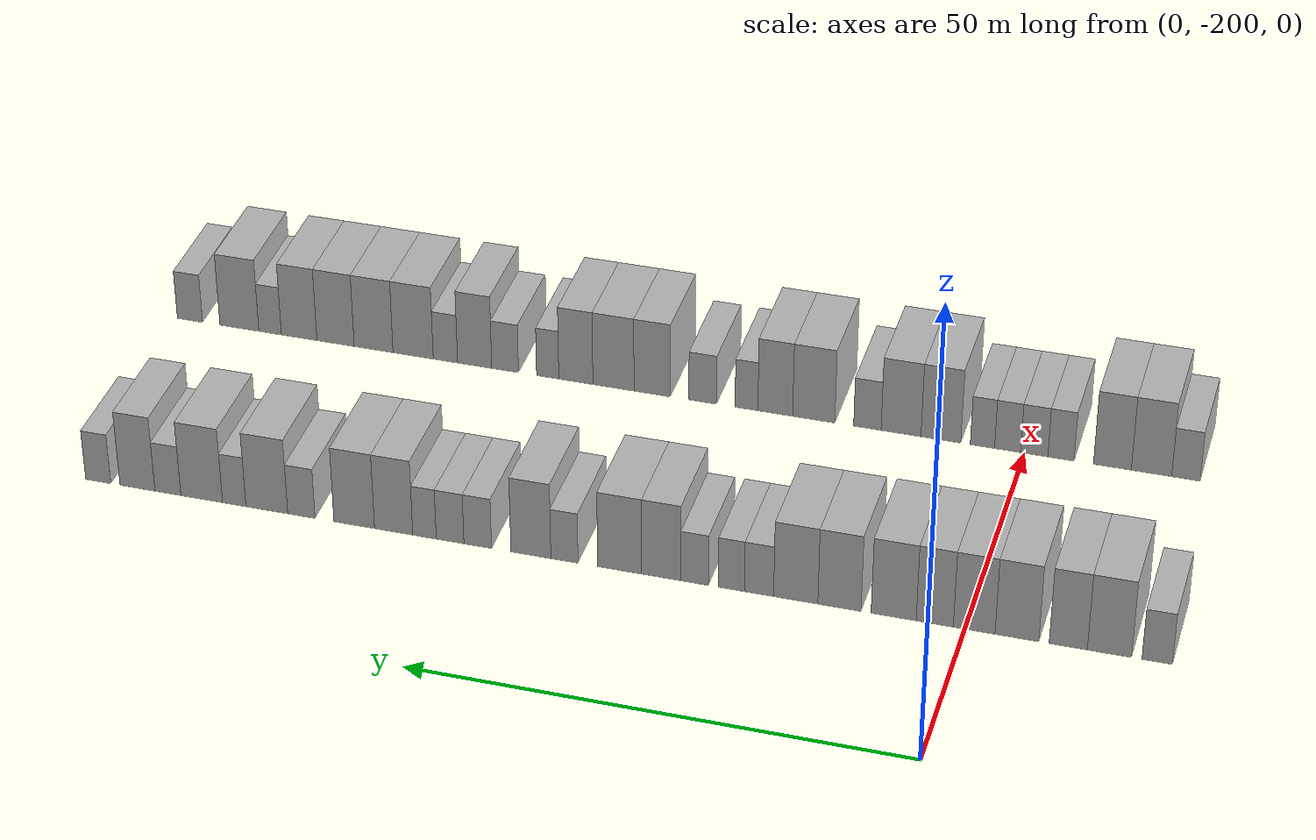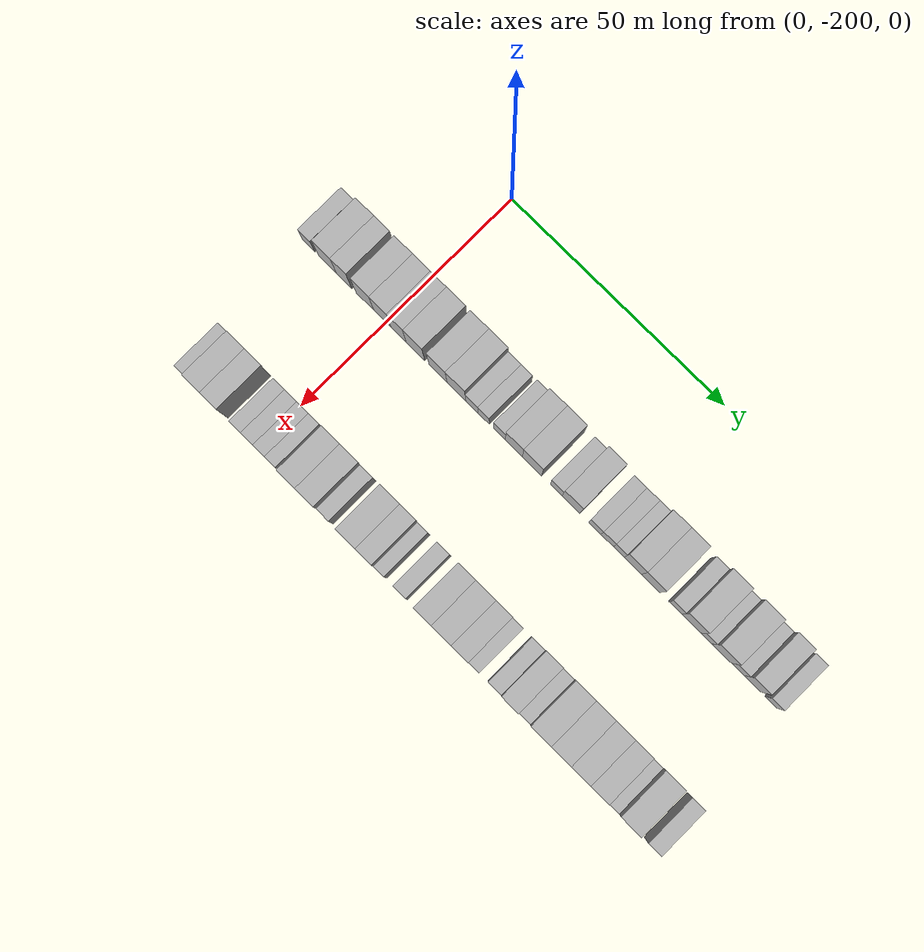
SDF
<sdf version="1.6">
 <world name="default">
  <model name="building_1">
   <static>1</static>
   <pose>25.0000 -218.5460 0 0.000000 0.000000 0.000000</pose>
   <link name="link">
    <pose>0 0 3.00 0 0 0</pose>
    <collision name="collision"><geometry><box><size>10.0000 2.9079 6.0000</size></box></geometry></collision>
    <visual name="visual">
     <cast_shadows>0</cast_shadows>
     <geometry><box><size>10.0000 2.9079 6.0000</size></box></geometry>
     <material>
      <script>
       <uri>model://HANNAS_wall/materials/scripts</uri>
       <uri>model://HANNAS_wall/materials/textures</uri>
       <name>vrc/HANNAS_wall</name>
      </script>
     </material>
    </visual>
   </link>
  </model>
  <model name="building_2">
   <static>1</static>
   <pose>25.0000 -213.9712 0 0.000000 0.000000 0.000000</pose>
   <link name="link">
    <pose>0 0 4.50 0 0 0</pose>
    <collision name="collision"><geometry><box><size>10.0000 4.2417 9.0000</size></box></geometry></collision>
    <visual name="visual">
     <cast_shadows>0</cast_shadows>
     <geometry><box><size>10.0000 4.2417 9.0000</size></box></geometry>
     <material>
      <script>
       <uri>model://HANNAS_wall/materials/scripts</uri>
       <uri>model://HANNAS_wall/materials/textures</uri>
       <name>vrc/HANNAS_wall</name>
      </script>
     </material>
    </visual>
   </link>
  </model>
  <model name="building_3">
   <static>1</static>
   <pose>25.0000 -210.0111 0 0.000000 0.000000 0.000000</pose>
   <link name="link">
    <pose>0 0 4.50 0 0 0</pose>
    <collision name="collision"><geometry><box><size>10.0000 3.6786 9.0000</size></box></geometry></collision>
    <visual name="visual">
     <cast_shadows>0</cast_shadows>
     <geometry><box><size>10.0000 3.6786 9.0000</size></box></geometry>
     <material>
      <script>
       <uri>model://HANNAS_wall/materials/scripts</uri>
       <uri>model://HANNAS_wall/materials/textures</uri>
       <name>vrc/HANNAS_wall</name>
      </script>
     </material>
    </visual>
   </link>
  </model>
  <model name="building_4">
   <static>1</static>
   <pose>25.0000 -205.0438 0 0.000000 0.000000 0.000000</pose>
   <link name="link">
    <pose>0 0 4.50 0 0 0</pose>
    <collision name="collision"><geometry><box><size>10.0000 4.2560 9.0000</size></box></geometry></collision>
    <visual name="visual">
     <cast_shadows>0</cast_shadows>
     <geometry><box><size>10.0000 4.2560 9.0000</size></box></geometry>
     <material>
      <script>
       <uri>model://HANNAS_wall/materials/scripts</uri>
       <uri>model://HANNAS_wall/materials/textures</uri>
       <name>vrc/HANNAS_wall</name>
      </script>
     </material>
    </visual>
   </link>
  </model>
  <model name="building_5">
   <static>1</static>
   <pose>25.0000 -200.8795 0 0.000000 0.000000 0.000000</pose>
   <link name="link">
    <pose>0 0 4.50 0 0 0</pose>
    <collision name="collision"><geometry><box><size>10.0000 4.0725 9.0000</size></box></geometry></collision>
    <visual name="visual">
     <cast_shadows>0</cast_shadows>
     <geometry><box><size>10.0000 4.0725 9.0000</size></box></geometry>
     <material>
      <script>
       <uri>model://HANNAS_wall/materials/scripts</uri>
       <uri>model://HANNAS_wall/materials/textures</uri>
       <name>vrc/HANNAS_wall</name>
      </script>
     </material>
    </visual>
   </link>
  </model>
  <model name="building_6">
   <static>1</static>
   <pose>25.0000 -197.0260 0 0.000000 0.000000 0.000000</pose>
   <link name="link">
    <pose>0 0 4.50 0 0 0</pose>
    <collision name="collision"><geometry><box><size>10.0000 3.6344 9.0000</size></box></geometry></collision>
    <visual name="visual">
     <cast_shadows>0</cast_shadows>
     <geometry><box><size>10.0000 3.6344 9.0000</size></box></geometry>
     <material>
      <script>
       <uri>model://HANNAS_wall/materials/scripts</uri>
       <uri>model://HANNAS_wall/materials/textures</uri>
       <name>vrc/HANNAS_wall</name>
      </script>
     </material>
    </visual>
   </link>
  </model>
  <model name="building_7">
   <static>1</static>
   <pose>25.0000 -192.9910 0 0.000000 0.000000 0.000000</pose>
   <link name="link">
    <pose>0 0 4.50 0 0 0</pose>
    <collision name="collision"><geometry><box><size>10.0000 4.4356 9.0000</size></box></geometry></collision>
    <visual name="visual">
     <cast_shadows>0</cast_shadows>
     <geometry><box><size>10.0000 4.4356 9.0000</size></box></geometry>
     <material>
      <script>
       <uri>model://HANNAS_wall/materials/scripts</uri>
       <uri>model://HANNAS_wall/materials/textures</uri>
       <name>vrc/HANNAS_wall</name>
      </script>
     </material>
    </visual>
   </link>
  </model>
  <model name="building_8">
   <static>1</static>
   <pose>25.0000 -187.6323 0 0.000000 0.000000 0.000000</pose>
   <link name="link">
    <pose>0 0 4.50 0 0 0</pose>
    <collision name="collision"><geometry><box><size>10.0000 4.2819 9.0000</size></box></geometry></collision>
    <visual name="visual">
     <cast_shadows>0</cast_shadows>
     <geometry><box><size>10.0000 4.2819 9.0000</size></box></geometry>
     <material>
      <script>
       <uri>model://HANNAS_wall/materials/scripts</uri>
       <uri>model://HANNAS_wall/materials/textures</uri>
       <name>vrc/HANNAS_wall</name>
      </script>
     </material>
    </visual>
   </link>
  </model>
  <model name="building_9">
   <static>1</static>
   <pose>25.0000 -183.2862 0 0.000000 0.000000 0.000000</pose>
   <link name="link">
    <pose>0 0 4.50 0 0 0</pose>
    <collision name="collision"><geometry><box><size>10.0000 4.4103 9.0000</size></box></geometry></collision>
    <visual name="visual">
     <cast_shadows>0</cast_shadows>
     <geometry><box><size>10.0000 4.4103 9.0000</size></box></geometry>
     <material>
      <script>
       <uri>model://HANNAS_wall/materials/scripts</uri>
       <uri>model://HANNAS_wall/materials/textures</uri>
       <name>vrc/HANNAS_wall</name>
      </script>
     </material>
    </visual>
   </link>
  </model>
  <model name="building_10">
   <static>1</static>
   <pose>25.0000 -179.6199 0 0.000000 0.000000 0.000000</pose>
   <link name="link">
    <pose>0 0 3.00 0 0 0</pose>
    <collision name="collision"><geometry><box><size>10.0000 2.9221 6.0000</size></box></geometry></collision>
    <visual name="visual">
     <cast_shadows>0</cast_shadows>
     <geometry><box><size>10.0000 2.9221 6.0000</size></box></geometry>
     <material>
      <script>
       <uri>model://HANNAS_wall/materials/scripts</uri>
       <uri>model://HANNAS_wall/materials/textures</uri>
       <name>vrc/HANNAS_wall</name>
      </script>
     </material>
    </visual>
   </link>
  </model>
  <model name="building_11">
   <static>1</static>
   <pose>25.0000 -176.8499 0 0.000000 0.000000 0.000000</pose>
   <link name="link">
    <pose>0 0 3.00 0 0 0</pose>
    <collision name="collision"><geometry><box><size>10.0000 2.6181 6.0000</size></box></geometry></collision>
    <visual name="visual">
     <cast_shadows>0</cast_shadows>
     <geometry><box><size>10.0000 2.6181 6.0000</size></box></geometry>
     <material>
      <script>
       <uri>model://HANNAS_wall/materials/scripts</uri>
       <uri>model://HANNAS_wall/materials/textures</uri>
       <name>vrc/HANNAS_wall</name>
      </script>
     </material>
    </visual>
   </link>
  </model>
  <model name="building_12">
   <static>1</static>
   <pose>25.0000 -173.1496 0 0.000000 0.000000 0.000000</pose>
   <link name="link">
    <pose>0 0 3.00 0 0 0</pose>
    <collision name="collision"><geometry><box><size>10.0000 2.7825 6.0000</size></box></geometry></collision>
    <visual name="visual">
     <cast_shadows>0</cast_shadows>
     <geometry><box><size>10.0000 2.7825 6.0000</size></box></geometry>
     <material>
      <script>
       <uri>model://HANNAS_wall/materials/scripts</uri>
       <uri>model://HANNAS_wall/materials/textures</uri>
       <name>vrc/HANNAS_wall</name>
      </script>
     </material>
    </visual>
   </link>
  </model>
  <model name="building_13">
   <static>1</static>
   <pose>25.0000 -169.7729 0 0.000000 0.000000 0.000000</pose>
   <link name="link">
    <pose>0 0 4.50 0 0 0</pose>
    <collision name="collision"><geometry><box><size>10.0000 3.9707 9.0000</size></box></geometry></collision>
    <visual name="visual">
     <cast_shadows>0</cast_shadows>
     <geometry><box><size>10.0000 3.9707 9.0000</size></box></geometry>
     <material>
      <script>
       <uri>model://HANNAS_wall/materials/scripts</uri>
       <uri>model://HANNAS_wall/materials/textures</uri>
       <name>vrc/HANNAS_wall</name>
      </script>
     </material>
    </visual>
   </link>
  </model>
  <model name="building_14">
   <static>1</static>
   <pose>25.0000 -165.5477 0 0.000000 0.000000 0.000000</pose>
   <link name="link">
    <pose>0 0 4.50 0 0 0</pose>
    <collision name="collision"><geometry><box><size>10.0000 4.4798 9.0000</size></box></geometry></collision>
    <visual name="visual">
     <cast_shadows>0</cast_shadows>
     <geometry><box><size>10.0000 4.4798 9.0000</size></box></geometry>
     <material>
      <script>
       <uri>model://HANNAS_wall/materials/scripts</uri>
       <uri>model://HANNAS_wall/materials/textures</uri>
       <name>vrc/HANNAS_wall</name>
      </script>
     </material>
    </visual>
   </link>
  </model>
  <model name="building_15">
   <static>1</static>
   <pose>25.0000 -159.9158 0 0.000000 0.000000 0.000000</pose>
   <link name="link">
    <pose>0 0 3.00 0 0 0</pose>
    <collision name="collision"><geometry><box><size>10.0000 2.7840 6.0000</size></box></geometry></collision>
    <visual name="visual">
     <cast_shadows>0</cast_shadows>
     <geometry><box><size>10.0000 2.7840 6.0000</size></box></geometry>
     <material>
      <script>
       <uri>model://HANNAS_wall/materials/scripts</uri>
       <uri>model://HANNAS_wall/materials/textures</uri>
       <name>vrc/HANNAS_wall</name>
      </script>
     </material>
    </visual>
   </link>
  </model>
  <model name="building_16">
   <static>1</static>
   <pose>25.0000 -156.4676 0 0.000000 0.000000 0.000000</pose>
   <link name="link">
    <pose>0 0 4.50 0 0 0</pose>
    <collision name="collision"><geometry><box><size>10.0000 4.1124 9.0000</size></box></geometry></collision>
    <visual name="visual">
     <cast_shadows>0</cast_shadows>
     <geometry><box><size>10.0000 4.1124 9.0000</size></box></geometry>
     <material>
      <script>
       <uri>model://HANNAS_wall/materials/scripts</uri>
       <uri>model://HANNAS_wall/materials/textures</uri>
       <name>vrc/HANNAS_wall</name>
      </script>
     </material>
    </visual>
   </link>
  </model>
  <model name="building_17">
   <static>1</static>
   <pose>25.0000 -150.9805 0 0.000000 0.000000 0.000000</pose>
   <link name="link">
    <pose>0 0 3.00 0 0 0</pose>
    <collision name="collision"><geometry><box><size>10.0000 2.8616 6.0000</size></box></geometry></collision>
    <visual name="visual">
     <cast_shadows>0</cast_shadows>
     <geometry><box><size>10.0000 2.8616 6.0000</size></box></geometry>
     <material>
      <script>
       <uri>model://HANNAS_wall/materials/scripts</uri>
       <uri>model://HANNAS_wall/materials/textures</uri>
       <name>vrc/HANNAS_wall</name>
      </script>
     </material>
    </visual>
   </link>
  </model>
  <model name="building_18">
   <static>1</static>
   <pose>25.0000 -148.1120 0 0.000000 0.000000 0.000000</pose>
   <link name="link">
    <pose>0 0 3.00 0 0 0</pose>
    <collision name="collision"><geometry><box><size>10.0000 2.8755 6.0000</size></box></geometry></collision>
    <visual name="visual">
     <cast_shadows>0</cast_shadows>
     <geometry><box><size>10.0000 2.8755 6.0000</size></box></geometry>
     <material>
      <script>
       <uri>model://HANNAS_wall/materials/scripts</uri>
       <uri>model://HANNAS_wall/materials/textures</uri>
       <name>vrc/HANNAS_wall</name>
      </script>
     </material>
    </visual>
   </link>
  </model>
  <model name="building_19">
   <static>1</static>
   <pose>25.0000 -145.4479 0 0.000000 0.000000 0.000000</pose>
   <link name="link">
    <pose>0 0 3.00 0 0 0</pose>
    <collision name="collision"><geometry><box><size>10.0000 2.4528 6.0000</size></box></geometry></collision>
    <visual name="visual">
     <cast_shadows>0</cast_shadows>
     <geometry><box><size>10.0000 2.4528 6.0000</size></box></geometry>
     <material>
      <script>
       <uri>model://HANNAS_wall/materials/scripts</uri>
       <uri>model://HANNAS_wall/materials/textures</uri>
       <name>vrc/HANNAS_wall</name>
      </script>
     </material>
    </visual>
   </link>
  </model>
  <model name="building_20">
   <static>1</static>
   <pose>25.0000 -142.2186 0 0.000000 0.000000 0.000000</pose>
   <link name="link">
    <pose>0 0 4.50 0 0 0</pose>
    <collision name="collision"><geometry><box><size>10.0000 4.0057 9.0000</size></box></geometry></collision>
    <visual name="visual">
     <cast_shadows>0</cast_shadows>
     <geometry><box><size>10.0000 4.0057 9.0000</size></box></geometry>
     <material>
      <script>
       <uri>model://HANNAS_wall/materials/scripts</uri>
       <uri>model://HANNAS_wall/materials/textures</uri>
       <name>vrc/HANNAS_wall</name>
      </script>
     </material>
    </visual>
   </link>
  </model>
  <model name="building_21">
   <static>1</static>
   <pose>25.0000 -138.0832 0 0.000000 0.000000 0.000000</pose>
   <link name="link">
    <pose>0 0 4.50 0 0 0</pose>
    <collision name="collision"><geometry><box><size>10.0000 4.2652 9.0000</size></box></geometry></collision>
    <visual name="visual">
     <cast_shadows>0</cast_shadows>
     <geometry><box><size>10.0000 4.2652 9.0000</size></box></geometry>
     <material>
      <script>
       <uri>model://HANNAS_wall/materials/scripts</uri>
       <uri>model://HANNAS_wall/materials/textures</uri>
       <name>vrc/HANNAS_wall</name>
      </script>
     </material>
    </visual>
   </link>
  </model>
  <model name="building_22">
   <static>1</static>
   <pose>25.0000 -132.5046 0 0.000000 0.000000 0.000000</pose>
   <link name="link">
    <pose>0 0 3.00 0 0 0</pose>
    <collision name="collision"><geometry><box><size>10.0000 2.8920 6.0000</size></box></geometry></collision>
    <visual name="visual">
     <cast_shadows>0</cast_shadows>
     <geometry><box><size>10.0000 2.8920 6.0000</size></box></geometry>
     <material>
      <script>
       <uri>model://HANNAS_wall/materials/scripts</uri>
       <uri>model://HANNAS_wall/materials/textures</uri>
       <name>vrc/HANNAS_wall</name>
      </script>
     </material>
    </visual>
   </link>
  </model>
  <model name="building_23">
   <static>1</static>
   <pose>25.0000 -128.8323 0 0.000000 0.000000 0.000000</pose>
   <link name="link">
    <pose>0 0 4.50 0 0 0</pose>
    <collision name="collision"><geometry><box><size>10.0000 4.4527 9.0000</size></box></geometry></collision>
    <visual name="visual">
     <cast_shadows>0</cast_shadows>
     <geometry><box><size>10.0000 4.4527 9.0000</size></box></geometry>
     <material>
      <script>
       <uri>model://HANNAS_wall/materials/scripts</uri>
       <uri>model://HANNAS_wall/materials/textures</uri>
       <name>vrc/HANNAS_wall</name>
      </script>
     </material>
    </visual>
   </link>
  </model>
  <model name="building_24">
   <static>1</static>
   <pose>25.0000 -125.3593 0 0.000000 0.000000 0.000000</pose>
   <link name="link">
    <pose>0 0 3.00 0 0 0</pose>
    <collision name="collision"><geometry><box><size>10.0000 2.4932 6.0000</size></box></geometry></collision>
    <visual name="visual">
     <cast_shadows>0</cast_shadows>
     <geometry><box><size>10.0000 2.4932 6.0000</size></box></geometry>
     <material>
      <script>
       <uri>model://HANNAS_wall/materials/scripts</uri>
       <uri>model://HANNAS_wall/materials/textures</uri>
       <name>vrc/HANNAS_wall</name>
      </script>
     </material>
    </visual>
   </link>
  </model>
  <model name="building_25">
   <static>1</static>
   <pose>25.0000 -121.8784 0 0.000000 0.000000 0.000000</pose>
   <link name="link">
    <pose>0 0 4.50 0 0 0</pose>
    <collision name="collision"><geometry><box><size>10.0000 4.4687 9.0000</size></box></geometry></collision>
    <visual name="visual">
     <cast_shadows>0</cast_shadows>
     <geometry><box><size>10.0000 4.4687 9.0000</size></box></geometry>
     <material>
      <script>
       <uri>model://HANNAS_wall/materials/scripts</uri>
       <uri>model://HANNAS_wall/materials/textures</uri>
       <name>vrc/HANNAS_wall</name>
      </script>
     </material>
    </visual>
   </link>
  </model>
  <model name="building_26">
   <static>1</static>
   <pose>25.0000 -118.2513 0 0.000000 0.000000 0.000000</pose>
   <link name="link">
    <pose>0 0 3.00 0 0 0</pose>
    <collision name="collision"><geometry><box><size>10.0000 2.7856 6.0000</size></box></geometry></collision>
    <visual name="visual">
     <cast_shadows>0</cast_shadows>
     <geometry><box><size>10.0000 2.7856 6.0000</size></box></geometry>
     <material>
      <script>
       <uri>model://HANNAS_wall/materials/scripts</uri>
       <uri>model://HANNAS_wall/materials/textures</uri>
       <name>vrc/HANNAS_wall</name>
      </script>
     </material>
    </visual>
   </link>
  </model>
  <model name="building_27">
   <static>1</static>
   <pose>25.0000 -114.9687 0 0.000000 0.000000 0.000000</pose>
   <link name="link">
    <pose>0 0 4.50 0 0 0</pose>
    <collision name="collision"><geometry><box><size>10.0000 3.7795 9.0000</size></box></geometry></collision>
    <visual name="visual">
     <cast_shadows>0</cast_shadows>
     <geometry><box><size>10.0000 3.7795 9.0000</size></box></geometry>
     <material>
      <script>
       <uri>model://HANNAS_wall/materials/scripts</uri>
       <uri>model://HANNAS_wall/materials/textures</uri>
       <name>vrc/HANNAS_wall</name>
      </script>
     </material>
    </visual>
   </link>
  </model>
  <model name="building_28">
   <static>1</static>
   <pose>25.0000 -110.7197 0 0.000000 0.000000 0.000000</pose>
   <link name="link">
    <pose>0 0 3.00 0 0 0</pose>
    <collision name="collision"><geometry><box><size>10.0000 2.7185 6.0000</size></box></geometry></collision>
    <visual name="visual">
     <cast_shadows>0</cast_shadows>
     <geometry><box><size>10.0000 2.7185 6.0000</size></box></geometry>
     <material>
      <script>
       <uri>model://HANNAS_wall/materials/scripts</uri>
       <uri>model://HANNAS_wall/materials/textures</uri>
       <name>vrc/HANNAS_wall</name>
      </script>
     </material>
    </visual>
   </link>
  </model>
  <model name="building_112">
   <static>1</static>
   <pose>55.0000 -216.5493 0 0.000000 0.000000 0.000000</pose>
   <link name="link">
    <pose>0 0 3.00 0 0 0</pose>
    <collision name="collision"><geometry><box><size>10.0000 2.9014 6.0000</size></box></geometry></collision>
    <visual name="visual">
     <cast_shadows>0</cast_shadows>
     <geometry><box><size>10.0000 2.9014 6.0000</size></box></geometry>
     <material>
      <script>
       <uri>model://HANNAS_wall/materials/scripts</uri>
       <uri>model://HANNAS_wall/materials/textures</uri>
       <name>vrc/HANNAS_wall</name>
      </script>
     </material>
    </visual>
   </link>
  </model>
  <model name="building_113">
   <static>1</static>
   <pose>55.0000 -213.0366 0 0.000000 0.000000 0.000000</pose>
   <link name="link">
    <pose>0 0 4.50 0 0 0</pose>
    <collision name="collision"><geometry><box><size>10.0000 4.1239 9.0000</size></box></geometry></collision>
    <visual name="visual">
     <cast_shadows>0</cast_shadows>
     <geometry><box><size>10.0000 4.1239 9.0000</size></box></geometry>
     <material>
      <script>
       <uri>model://HANNAS_wall/materials/scripts</uri>
       <uri>model://HANNAS_wall/materials/textures</uri>
       <name>vrc/HANNAS_wall</name>
      </script>
     </material>
    </visual>
   </link>
  </model>
  <model name="building_114">
   <static>1</static>
   <pose>55.0000 -209.0374 0 0.000000 0.000000 0.000000</pose>
   <link name="link">
    <pose>0 0 4.50 0 0 0</pose>
    <collision name="collision"><geometry><box><size>10.0000 3.8745 9.0000</size></box></geometry></collision>
    <visual name="visual">
     <cast_shadows>0</cast_shadows>
     <geometry><box><size>10.0000 3.8745 9.0000</size></box></geometry>
     <material>
      <script>
       <uri>model://HANNAS_wall/materials/scripts</uri>
       <uri>model://HANNAS_wall/materials/textures</uri>
       <name>vrc/HANNAS_wall</name>
      </script>
     </material>
    </visual>
   </link>
  </model>
  <model name="building_115">
   <static>1</static>
   <pose>55.0000 -203.7443 0 0.000000 0.000000 0.000000</pose>
   <link name="link">
    <pose>0 0 3.00 0 0 0</pose>
    <collision name="collision"><geometry><box><size>10.0000 2.7118 6.0000</size></box></geometry></collision>
    <visual name="visual">
     <cast_shadows>0</cast_shadows>
     <geometry><box><size>10.0000 2.7118 6.0000</size></box></geometry>
     <material>
      <script>
       <uri>model://HANNAS_wall/materials/scripts</uri>
       <uri>model://HANNAS_wall/materials/textures</uri>
       <name>vrc/HANNAS_wall</name>
      </script>
     </material>
    </visual>
   </link>
  </model>
  <model name="building_116">
   <static>1</static>
   <pose>55.0000 -200.9779 0 0.000000 0.000000 0.000000</pose>
   <link name="link">
    <pose>0 0 3.00 0 0 0</pose>
    <collision name="collision"><geometry><box><size>10.0000 2.8209 6.0000</size></box></geometry></collision>
    <visual name="visual">
     <cast_shadows>0</cast_shadows>
     <geometry><box><size>10.0000 2.8209 6.0000</size></box></geometry>
     <material>
      <script>
       <uri>model://HANNAS_wall/materials/scripts</uri>
       <uri>model://HANNAS_wall/materials/textures</uri>
       <name>vrc/HANNAS_wall</name>
      </script>
     </material>
    </visual>
   </link>
  </model>
  <model name="building_117">
   <static>1</static>
   <pose>55.0000 -198.2120 0 0.000000 0.000000 0.000000</pose>
   <link name="link">
    <pose>0 0 3.00 0 0 0</pose>
    <collision name="collision"><geometry><box><size>10.0000 2.7109 6.0000</size></box></geometry></collision>
    <visual name="visual">
     <cast_shadows>0</cast_shadows>
     <geometry><box><size>10.0000 2.7109 6.0000</size></box></geometry>
     <material>
      <script>
       <uri>model://HANNAS_wall/materials/scripts</uri>
       <uri>model://HANNAS_wall/materials/textures</uri>
       <name>vrc/HANNAS_wall</name>
      </script>
     </material>
    </visual>
   </link>
  </model>
  <model name="building_118">
   <static>1</static>
   <pose>55.0000 -195.5920 0 0.000000 0.000000 0.000000</pose>
   <link name="link">
    <pose>0 0 3.00 0 0 0</pose>
    <collision name="collision"><geometry><box><size>10.0000 2.5291 6.0000</size></box></geometry></collision>
    <visual name="visual">
     <cast_shadows>0</cast_shadows>
     <geometry><box><size>10.0000 2.5291 6.0000</size></box></geometry>
     <material>
      <script>
       <uri>model://HANNAS_wall/materials/scripts</uri>
       <uri>model://HANNAS_wall/materials/textures</uri>
       <name>vrc/HANNAS_wall</name>
      </script>
     </material>
    </visual>
   </link>
  </model>
  <model name="building_119">
   <static>1</static>
   <pose>55.0000 -191.2429 0 0.000000 0.000000 0.000000</pose>
   <link name="link">
    <pose>0 0 4.50 0 0 0</pose>
    <collision name="collision"><geometry><box><size>10.0000 4.1691 9.0000</size></box></geometry></collision>
    <visual name="visual">
     <cast_shadows>0</cast_shadows>
     <geometry><box><size>10.0000 4.1691 9.0000</size></box></geometry>
     <material>
      <script>
       <uri>model://HANNAS_wall/materials/scripts</uri>
       <uri>model://HANNAS_wall/materials/textures</uri>
       <name>vrc/HANNAS_wall</name>
      </script>
     </material>
    </visual>
   </link>
  </model>
  <model name="building_120">
   <static>1</static>
   <pose>55.0000 -187.0582 0 0.000000 0.000000 0.000000</pose>
   <link name="link">
    <pose>0 0 4.50 0 0 0</pose>
    <collision name="collision"><geometry><box><size>10.0000 4.2002 9.0000</size></box></geometry></collision>
    <visual name="visual">
     <cast_shadows>0</cast_shadows>
     <geometry><box><size>10.0000 4.2002 9.0000</size></box></geometry>
     <material>
      <script>
       <uri>model://HANNAS_wall/materials/scripts</uri>
       <uri>model://HANNAS_wall/materials/textures</uri>
       <name>vrc/HANNAS_wall</name>
      </script>
     </material>
    </visual>
   </link>
  </model>
  <model name="building_121">
   <static>1</static>
   <pose>55.0000 -183.5111 0 0.000000 0.000000 0.000000</pose>
   <link name="link">
    <pose>0 0 3.00 0 0 0</pose>
    <collision name="collision"><geometry><box><size>10.0000 2.8941 6.0000</size></box></geometry></collision>
    <visual name="visual">
     <cast_shadows>0</cast_shadows>
     <geometry><box><size>10.0000 2.8941 6.0000</size></box></geometry>
     <material>
      <script>
       <uri>model://HANNAS_wall/materials/scripts</uri>
       <uri>model://HANNAS_wall/materials/textures</uri>
       <name>vrc/HANNAS_wall</name>
      </script>
     </material>
    </visual>
   </link>
  </model>
  <model name="building_122">
   <static>1</static>
   <pose>55.0000 -177.8182 0 0.000000 0.000000 0.000000</pose>
   <link name="link">
    <pose>0 0 4.50 0 0 0</pose>
    <collision name="collision"><geometry><box><size>10.0000 4.4916 9.0000</size></box></geometry></collision>
    <visual name="visual">
     <cast_shadows>0</cast_shadows>
     <geometry><box><size>10.0000 4.4916 9.0000</size></box></geometry>
     <material>
      <script>
       <uri>model://HANNAS_wall/materials/scripts</uri>
       <uri>model://HANNAS_wall/materials/textures</uri>
       <name>vrc/HANNAS_wall</name>
      </script>
     </material>
    </visual>
   </link>
  </model>
  <model name="building_123">
   <static>1</static>
   <pose>55.0000 -173.7120 0 0.000000 0.000000 0.000000</pose>
   <link name="link">
    <pose>0 0 4.50 0 0 0</pose>
    <collision name="collision"><geometry><box><size>10.0000 3.7207 9.0000</size></box></geometry></collision>
    <visual name="visual">
     <cast_shadows>0</cast_shadows>
     <geometry><box><size>10.0000 3.7207 9.0000</size></box></geometry>
     <material>
      <script>
       <uri>model://HANNAS_wall/materials/scripts</uri>
       <uri>model://HANNAS_wall/materials/textures</uri>
       <name>vrc/HANNAS_wall</name>
      </script>
     </material>
    </visual>
   </link>
  </model>
  <model name="building_124">
   <static>1</static>
   <pose>55.0000 -170.6354 0 0.000000 0.000000 0.000000</pose>
   <link name="link">
    <pose>0 0 3.00 0 0 0</pose>
    <collision name="collision"><geometry><box><size>10.0000 2.4325 6.0000</size></box></geometry></collision>
    <visual name="visual">
     <cast_shadows>0</cast_shadows>
     <geometry><box><size>10.0000 2.4325 6.0000</size></box></geometry>
     <material>
      <script>
       <uri>model://HANNAS_wall/materials/scripts</uri>
       <uri>model://HANNAS_wall/materials/textures</uri>
       <name>vrc/HANNAS_wall</name>
      </script>
     </material>
    </visual>
   </link>
  </model>
  <model name="building_125">
   <static>1</static>
   <pose>55.0000 -165.9269 0 0.000000 0.000000 0.000000</pose>
   <link name="link">
    <pose>0 0 3.00 0 0 0</pose>
    <collision name="collision"><geometry><box><size>10.0000 2.9844 6.0000</size></box></geometry></collision>
    <visual name="visual">
     <cast_shadows>0</cast_shadows>
     <geometry><box><size>10.0000 2.9844 6.0000</size></box></geometry>
     <material>
      <script>
       <uri>model://HANNAS_wall/materials/scripts</uri>
       <uri>model://HANNAS_wall/materials/textures</uri>
       <name>vrc/HANNAS_wall</name>
      </script>
     </material>
    </visual>
   </link>
  </model>
  <model name="building_126">
   <static>1</static>
   <pose>55.0000 -160.4622 0 0.000000 0.000000 0.000000</pose>
   <link name="link">
    <pose>0 0 4.50 0 0 0</pose>
    <collision name="collision"><geometry><box><size>10.0000 3.9450 9.0000</size></box></geometry></collision>
    <visual name="visual">
     <cast_shadows>0</cast_shadows>
     <geometry><box><size>10.0000 3.9450 9.0000</size></box></geometry>
     <material>
      <script>
       <uri>model://HANNAS_wall/materials/scripts</uri>
       <uri>model://HANNAS_wall/materials/textures</uri>
       <name>vrc/HANNAS_wall</name>
      </script>
     </material>
    </visual>
   </link>
  </model>
  <model name="building_127">
   <static>1</static>
   <pose>55.0000 -156.2478 0 0.000000 0.000000 0.000000</pose>
   <link name="link">
    <pose>0 0 4.50 0 0 0</pose>
    <collision name="collision"><geometry><box><size>10.0000 4.4839 9.0000</size></box></geometry></collision>
    <visual name="visual">
     <cast_shadows>0</cast_shadows>
     <geometry><box><size>10.0000 4.4839 9.0000</size></box></geometry>
     <material>
      <script>
       <uri>model://HANNAS_wall/materials/scripts</uri>
       <uri>model://HANNAS_wall/materials/textures</uri>
       <name>vrc/HANNAS_wall</name>
      </script>
     </material>
    </visual>
   </link>
  </model>
  <model name="building_128">
   <static>1</static>
   <pose>55.0000 -152.1374 0 0.000000 0.000000 0.000000</pose>
   <link name="link">
    <pose>0 0 4.50 0 0 0</pose>
    <collision name="collision"><geometry><box><size>10.0000 3.7369 9.0000</size></box></geometry></collision>
    <visual name="visual">
     <cast_shadows>0</cast_shadows>
     <geometry><box><size>10.0000 3.7369 9.0000</size></box></geometry>
     <material>
      <script>
       <uri>model://HANNAS_wall/materials/scripts</uri>
       <uri>model://HANNAS_wall/materials/textures</uri>
       <name>vrc/HANNAS_wall</name>
      </script>
     </material>
    </visual>
   </link>
  </model>
  <model name="building_129">
   <static>1</static>
   <pose>55.0000 -149.0524 0 0.000000 0.000000 0.000000</pose>
   <link name="link">
    <pose>0 0 3.00 0 0 0</pose>
    <collision name="collision"><geometry><box><size>10.0000 2.4331 6.0000</size></box></geometry></collision>
    <visual name="visual">
     <cast_shadows>0</cast_shadows>
     <geometry><box><size>10.0000 2.4331 6.0000</size></box></geometry>
     <material>
      <script>
       <uri>model://HANNAS_wall/materials/scripts</uri>
       <uri>model://HANNAS_wall/materials/textures</uri>
       <name>vrc/HANNAS_wall</name>
      </script>
     </material>
    </visual>
   </link>
  </model>
  <model name="building_130">
   <static>1</static>
   <pose>55.0000 -144.3599 0 0.000000 0.000000 0.000000</pose>
   <link name="link">
    <pose>0 0 3.00 0 0 0</pose>
    <collision name="collision"><geometry><box><size>10.0000 2.9521 6.0000</size></box></geometry></collision>
    <visual name="visual">
     <cast_shadows>0</cast_shadows>
     <geometry><box><size>10.0000 2.9521 6.0000</size></box></geometry>
     <material>
      <script>
       <uri>model://HANNAS_wall/materials/scripts</uri>
       <uri>model://HANNAS_wall/materials/textures</uri>
       <name>vrc/HANNAS_wall</name>
      </script>
     </material>
    </visual>
   </link>
  </model>
  <model name="building_131">
   <static>1</static>
   <pose>55.0000 -140.9871 0 0.000000 0.000000 0.000000</pose>
   <link name="link">
    <pose>0 0 4.50 0 0 0</pose>
    <collision name="collision"><geometry><box><size>10.0000 3.7935 9.0000</size></box></geometry></collision>
    <visual name="visual">
     <cast_shadows>0</cast_shadows>
     <geometry><box><size>10.0000 3.7935 9.0000</size></box></geometry>
     <material>
      <script>
       <uri>model://HANNAS_wall/materials/scripts</uri>
       <uri>model://HANNAS_wall/materials/textures</uri>
       <name>vrc/HANNAS_wall</name>
      </script>
     </material>
    </visual>
   </link>
  </model>
  <model name="building_132">
   <static>1</static>
   <pose>55.0000 -137.7353 0 0.000000 0.000000 0.000000</pose>
   <link name="link">
    <pose>0 0 3.00 0 0 0</pose>
    <collision name="collision"><geometry><box><size>10.0000 2.7101 6.0000</size></box></geometry></collision>
    <visual name="visual">
     <cast_shadows>0</cast_shadows>
     <geometry><box><size>10.0000 2.7101 6.0000</size></box></geometry>
     <material>
      <script>
       <uri>model://HANNAS_wall/materials/scripts</uri>
       <uri>model://HANNAS_wall/materials/textures</uri>
       <name>vrc/HANNAS_wall</name>
      </script>
     </material>
    </visual>
   </link>
  </model>
  <model name="building_133">
   <static>1</static>
   <pose>55.0000 -134.1336 0 0.000000 0.000000 0.000000</pose>
   <link name="link">
    <pose>0 0 4.50 0 0 0</pose>
    <collision name="collision"><geometry><box><size>10.0000 4.4932 9.0000</size></box></geometry></collision>
    <visual name="visual">
     <cast_shadows>0</cast_shadows>
     <geometry><box><size>10.0000 4.4932 9.0000</size></box></geometry>
     <material>
      <script>
       <uri>model://HANNAS_wall/materials/scripts</uri>
       <uri>model://HANNAS_wall/materials/textures</uri>
       <name>vrc/HANNAS_wall</name>
      </script>
     </material>
    </visual>
   </link>
  </model>
  <model name="building_134">
   <static>1</static>
   <pose>55.0000 -129.7055 0 0.000000 0.000000 0.000000</pose>
   <link name="link">
    <pose>0 0 4.50 0 0 0</pose>
    <collision name="collision"><geometry><box><size>10.0000 4.3630 9.0000</size></box></geometry></collision>
    <visual name="visual">
     <cast_shadows>0</cast_shadows>
     <geometry><box><size>10.0000 4.3630 9.0000</size></box></geometry>
     <material>
      <script>
       <uri>model://HANNAS_wall/materials/scripts</uri>
       <uri>model://HANNAS_wall/materials/textures</uri>
       <name>vrc/HANNAS_wall</name>
      </script>
     </material>
    </visual>
   </link>
  </model>
  <model name="building_135">
   <static>1</static>
   <pose>55.0000 -125.4184 0 0.000000 0.000000 0.000000</pose>
   <link name="link">
    <pose>0 0 4.50 0 0 0</pose>
    <collision name="collision"><geometry><box><size>10.0000 4.2111 9.0000</size></box></geometry></collision>
    <visual name="visual">
     <cast_shadows>0</cast_shadows>
     <geometry><box><size>10.0000 4.2111 9.0000</size></box></geometry>
     <material>
      <script>
       <uri>model://HANNAS_wall/materials/scripts</uri>
       <uri>model://HANNAS_wall/materials/textures</uri>
       <name>vrc/HANNAS_wall</name>
      </script>
     </material>
    </visual>
   </link>
  </model>
  <model name="building_136">
   <static>1</static>
   <pose>55.0000 -121.3007 0 0.000000 0.000000 0.000000</pose>
   <link name="link">
    <pose>0 0 4.50 0 0 0</pose>
    <collision name="collision"><geometry><box><size>10.0000 4.0243 9.0000</size></box></geometry></collision>
    <visual name="visual">
     <cast_shadows>0</cast_shadows>
     <geometry><box><size>10.0000 4.0243 9.0000</size></box></geometry>
     <material>
      <script>
       <uri>model://HANNAS_wall/materials/scripts</uri>
       <uri>model://HANNAS_wall/materials/textures</uri>
       <name>vrc/HANNAS_wall</name>
      </script>
     </material>
    </visual>
   </link>
  </model>
  <model name="building_137">
   <static>1</static>
   <pose>55.0000 -118.0044 0 0.000000 0.000000 0.000000</pose>
   <link name="link">
    <pose>0 0 3.00 0 0 0</pose>
    <collision name="collision"><geometry><box><size>10.0000 2.5684 6.0000</size></box></geometry></collision>
    <visual name="visual">
     <cast_shadows>0</cast_shadows>
     <geometry><box><size>10.0000 2.5684 6.0000</size></box></geometry>
     <material>
      <script>
       <uri>model://HANNAS_wall/materials/scripts</uri>
       <uri>model://HANNAS_wall/materials/textures</uri>
       <name>vrc/HANNAS_wall</name>
      </script>
     </material>
    </visual>
   </link>
  </model>
  <model name="building_138">
   <static>1</static>
   <pose>55.0000 -114.5046 0 0.000000 0.000000 0.000000</pose>
   <link name="link">
    <pose>0 0 4.50 0 0 0</pose>
    <collision name="collision"><geometry><box><size>10.0000 4.4313 9.0000</size></box></geometry></collision>
    <visual name="visual">
     <cast_shadows>0</cast_shadows>
     <geometry><box><size>10.0000 4.4313 9.0000</size></box></geometry>
     <material>
      <script>
       <uri>model://HANNAS_wall/materials/scripts</uri>
       <uri>model://HANNAS_wall/materials/textures</uri>
       <name>vrc/HANNAS_wall</name>
      </script>
     </material>
    </visual>
   </link>
  </model>
  <model name="building_139">
   <static>1</static>
   <pose>55.0000 -108.8471 0 0.000000 0.000000 0.000000</pose>
   <link name="link">
    <pose>0 0 3.00 0 0 0</pose>
    <collision name="collision"><geometry><box><size>10.0000 2.8836 6.0000</size></box></geometry></collision>
    <visual name="visual">
     <cast_shadows>0</cast_shadows>
     <geometry><box><size>10.0000 2.8836 6.0000</size></box></geometry>
     <material>
      <script>
       <uri>model://HANNAS_wall/materials/scripts</uri>
       <uri>model://HANNAS_wall/materials/textures</uri>
       <name>vrc/HANNAS_wall</name>
      </script>
     </material>
    </visual>
   </link>
  </model>
 </world>
</sdf>
